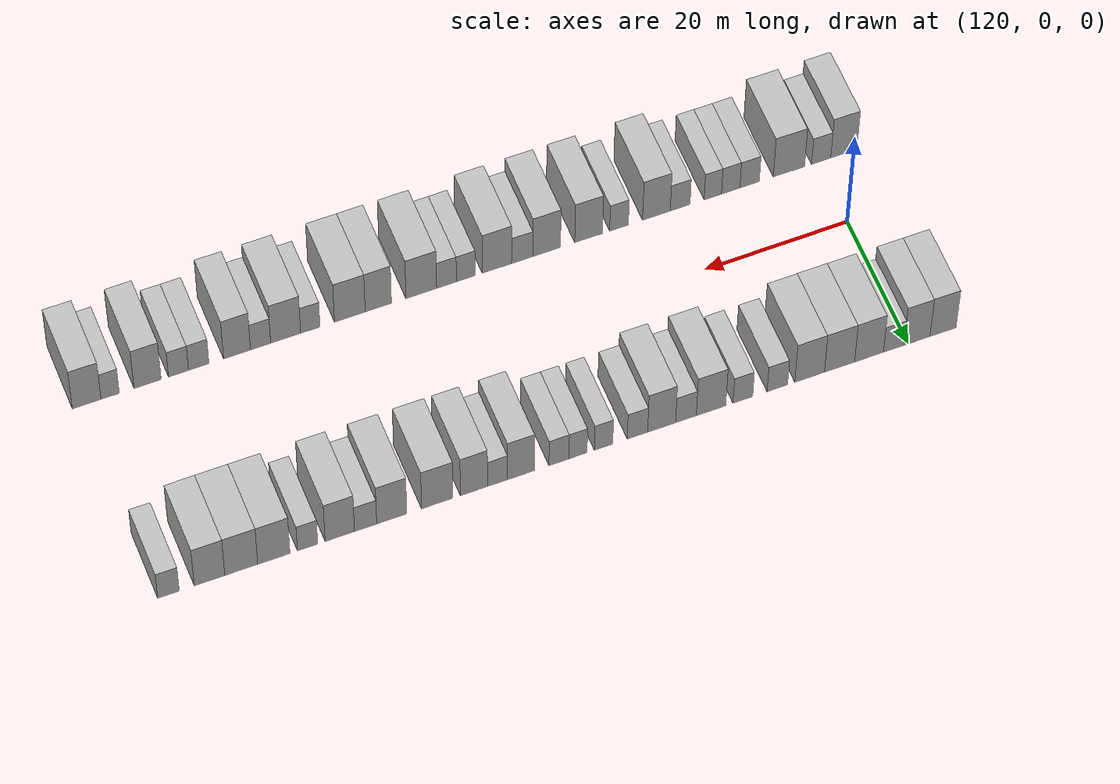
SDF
<sdf version="1.6">
 <world name="default">
  <model name="building_28">
   <static>1</static>
   <pose>115.1273 15.0000 0 0.000000 0.000000 1.570796</pose>
   <link name="link">
    <pose>0 0 4.50 0 0 0</pose>
    <collision name="collision"><geometry><box><size>10.0000 3.6715 9.0000</size></box></geometry></collision>
    <visual name="visual">
     <cast_shadows>0</cast_shadows>
     <geometry><box><size>10.0000 3.6715 9.0000</size></box></geometry>
     <material>
      <script>
       <uri>model://HANNAS_wall/materials/scripts</uri>
       <uri>model://HANNAS_wall/materials/textures</uri>
       <name>vrc/HANNAS_wall</name>
      </script>
     </material>
    </visual>
   </link>
  </model>
  <model name="building_29">
   <static>1</static>
   <pose>118.7872 15.0000 0 0.000000 0.000000 1.570796</pose>
   <link name="link">
    <pose>0 0 4.50 0 0 0</pose>
    <collision name="collision"><geometry><box><size>10.0000 3.6483 9.0000</size></box></geometry></collision>
    <visual name="visual">
     <cast_shadows>0</cast_shadows>
     <geometry><box><size>10.0000 3.6483 9.0000</size></box></geometry>
     <material>
      <script>
       <uri>model://HANNAS_wall/materials/scripts</uri>
       <uri>model://HANNAS_wall/materials/textures</uri>
       <name>vrc/HANNAS_wall</name>
      </script>
     </material>
    </visual>
   </link>
  </model>
  <model name="building_30">
   <static>1</static>
   <pose>122.0579 15.0000 0 0.000000 0.000000 1.570796</pose>
   <link name="link">
    <pose>0 0 3.00 0 0 0</pose>
    <collision name="collision"><geometry><box><size>10.0000 2.8931 6.0000</size></box></geometry></collision>
    <visual name="visual">
     <cast_shadows>0</cast_shadows>
     <geometry><box><size>10.0000 2.8931 6.0000</size></box></geometry>
     <material>
      <script>
       <uri>model://HANNAS_wall/materials/scripts</uri>
       <uri>model://HANNAS_wall/materials/textures</uri>
       <name>vrc/HANNAS_wall</name>
      </script>
     </material>
    </visual>
   </link>
  </model>
  <model name="building_31">
   <static>1</static>
   <pose>125.5207 15.0000 0 0.000000 0.000000 1.570796</pose>
   <link name="link">
    <pose>0 0 4.50 0 0 0</pose>
    <collision name="collision"><geometry><box><size>10.0000 4.0324 9.0000</size></box></geometry></collision>
    <visual name="visual">
     <cast_shadows>0</cast_shadows>
     <geometry><box><size>10.0000 4.0324 9.0000</size></box></geometry>
     <material>
      <script>
       <uri>model://HANNAS_wall/materials/scripts</uri>
       <uri>model://HANNAS_wall/materials/textures</uri>
       <name>vrc/HANNAS_wall</name>
      </script>
     </material>
    </visual>
   </link>
  </model>
  <model name="building_32">
   <static>1</static>
   <pose>129.6454 15.0000 0 0.000000 0.000000 1.570796</pose>
   <link name="link">
    <pose>0 0 4.50 0 0 0</pose>
    <collision name="collision"><geometry><box><size>10.0000 4.2172 9.0000</size></box></geometry></collision>
    <visual name="visual">
     <cast_shadows>0</cast_shadows>
     <geometry><box><size>10.0000 4.2172 9.0000</size></box></geometry>
     <material>
      <script>
       <uri>model://HANNAS_wall/materials/scripts</uri>
       <uri>model://HANNAS_wall/materials/textures</uri>
       <name>vrc/HANNAS_wall</name>
      </script>
     </material>
    </visual>
   </link>
  </model>
  <model name="building_33">
   <static>1</static>
   <pose>133.8189 15.0000 0 0.000000 0.000000 1.570796</pose>
   <link name="link">
    <pose>0 0 4.50 0 0 0</pose>
    <collision name="collision"><geometry><box><size>10.0000 4.1298 9.0000</size></box></geometry></collision>
    <visual name="visual">
     <cast_shadows>0</cast_shadows>
     <geometry><box><size>10.0000 4.1298 9.0000</size></box></geometry>
     <material>
      <script>
       <uri>model://HANNAS_wall/materials/scripts</uri>
       <uri>model://HANNAS_wall/materials/textures</uri>
       <name>vrc/HANNAS_wall</name>
      </script>
     </material>
    </visual>
   </link>
  </model>
  <model name="building_34">
   <static>1</static>
   <pose>138.3126 15.0000 0 0.000000 0.000000 1.570796</pose>
   <link name="link">
    <pose>0 0 3.00 0 0 0</pose>
    <collision name="collision"><geometry><box><size>10.0000 2.8577 6.0000</size></box></geometry></collision>
    <visual name="visual">
     <cast_shadows>0</cast_shadows>
     <geometry><box><size>10.0000 2.8577 6.0000</size></box></geometry>
     <material>
      <script>
       <uri>model://HANNAS_wall/materials/scripts</uri>
       <uri>model://HANNAS_wall/materials/textures</uri>
       <name>vrc/HANNAS_wall</name>
      </script>
     </material>
    </visual>
   </link>
  </model>
  <model name="building_35">
   <static>1</static>
   <pose>143.1070 15.0000 0 0.000000 0.000000 1.570796</pose>
   <link name="link">
    <pose>0 0 3.00 0 0 0</pose>
    <collision name="collision"><geometry><box><size>10.0000 2.7310 6.0000</size></box></geometry></collision>
    <visual name="visual">
     <cast_shadows>0</cast_shadows>
     <geometry><box><size>10.0000 2.7310 6.0000</size></box></geometry>
     <material>
      <script>
       <uri>model://HANNAS_wall/materials/scripts</uri>
       <uri>model://HANNAS_wall/materials/textures</uri>
       <name>vrc/HANNAS_wall</name>
      </script>
     </material>
    </visual>
   </link>
  </model>
  <model name="building_36">
   <static>1</static>
   <pose>147.5088 15.0000 0 0.000000 0.000000 1.570796</pose>
   <link name="link">
    <pose>0 0 4.50 0 0 0</pose>
    <collision name="collision"><geometry><box><size>10.0000 4.0727 9.0000</size></box></geometry></collision>
    <visual name="visual">
     <cast_shadows>0</cast_shadows>
     <geometry><box><size>10.0000 4.0727 9.0000</size></box></geometry>
     <material>
      <script>
       <uri>model://HANNAS_wall/materials/scripts</uri>
       <uri>model://HANNAS_wall/materials/textures</uri>
       <name>vrc/HANNAS_wall</name>
      </script>
     </material>
    </visual>
   </link>
  </model>
  <model name="building_37">
   <static>1</static>
   <pose>150.9793 15.0000 0 0.000000 0.000000 1.570796</pose>
   <link name="link">
    <pose>0 0 3.00 0 0 0</pose>
    <collision name="collision"><geometry><box><size>10.0000 2.8682 6.0000</size></box></geometry></collision>
    <visual name="visual">
     <cast_shadows>0</cast_shadows>
     <geometry><box><size>10.0000 2.8682 6.0000</size></box></geometry>
     <material>
      <script>
       <uri>model://HANNAS_wall/materials/scripts</uri>
       <uri>model://HANNAS_wall/materials/textures</uri>
       <name>vrc/HANNAS_wall</name>
      </script>
     </material>
    </visual>
   </link>
  </model>
  <model name="building_38">
   <static>1</static>
   <pose>154.3399 15.0000 0 0.000000 0.000000 1.570796</pose>
   <link name="link">
    <pose>0 0 4.50 0 0 0</pose>
    <collision name="collision"><geometry><box><size>10.0000 3.8530 9.0000</size></box></geometry></collision>
    <visual name="visual">
     <cast_shadows>0</cast_shadows>
     <geometry><box><size>10.0000 3.8530 9.0000</size></box></geometry>
     <material>
      <script>
       <uri>model://HANNAS_wall/materials/scripts</uri>
       <uri>model://HANNAS_wall/materials/textures</uri>
       <name>vrc/HANNAS_wall</name>
      </script>
     </material>
    </visual>
   </link>
  </model>
  <model name="building_39">
   <static>1</static>
   <pose>157.6672 15.0000 0 0.000000 0.000000 1.570796</pose>
   <link name="link">
    <pose>0 0 3.00 0 0 0</pose>
    <collision name="collision"><geometry><box><size>10.0000 2.8016 6.0000</size></box></geometry></collision>
    <visual name="visual">
     <cast_shadows>0</cast_shadows>
     <geometry><box><size>10.0000 2.8016 6.0000</size></box></geometry>
     <material>
      <script>
       <uri>model://HANNAS_wall/materials/scripts</uri>
       <uri>model://HANNAS_wall/materials/textures</uri>
       <name>vrc/HANNAS_wall</name>
      </script>
     </material>
    </visual>
   </link>
  </model>
  <model name="building_40">
   <static>1</static>
   <pose>162.3288 15.0000 0 0.000000 0.000000 1.570796</pose>
   <link name="link">
    <pose>0 0 3.00 0 0 0</pose>
    <collision name="collision"><geometry><box><size>10.0000 2.5216 6.0000</size></box></geometry></collision>
    <visual name="visual">
     <cast_shadows>0</cast_shadows>
     <geometry><box><size>10.0000 2.5216 6.0000</size></box></geometry>
     <material>
      <script>
       <uri>model://HANNAS_wall/materials/scripts</uri>
       <uri>model://HANNAS_wall/materials/textures</uri>
       <name>vrc/HANNAS_wall</name>
      </script>
     </material>
    </visual>
   </link>
  </model>
  <model name="building_41">
   <static>1</static>
   <pose>165.8322 15.0000 0 0.000000 0.000000 1.570796</pose>
   <link name="link">
    <pose>0 0 3.00 0 0 0</pose>
    <collision name="collision"><geometry><box><size>10.0000 2.4854 6.0000</size></box></geometry></collision>
    <visual name="visual">
     <cast_shadows>0</cast_shadows>
     <geometry><box><size>10.0000 2.4854 6.0000</size></box></geometry>
     <material>
      <script>
       <uri>model://HANNAS_wall/materials/scripts</uri>
       <uri>model://HANNAS_wall/materials/textures</uri>
       <name>vrc/HANNAS_wall</name>
      </script>
     </material>
    </visual>
   </link>
  </model>
  <model name="building_42">
   <static>1</static>
   <pose>168.4433 15.0000 0 0.000000 0.000000 1.570796</pose>
   <link name="link">
    <pose>0 0 3.00 0 0 0</pose>
    <collision name="collision"><geometry><box><size>10.0000 2.7369 6.0000</size></box></geometry></collision>
    <visual name="visual">
     <cast_shadows>0</cast_shadows>
     <geometry><box><size>10.0000 2.7369 6.0000</size></box></geometry>
     <material>
      <script>
       <uri>model://HANNAS_wall/materials/scripts</uri>
       <uri>model://HANNAS_wall/materials/textures</uri>
       <name>vrc/HANNAS_wall</name>
      </script>
     </material>
    </visual>
   </link>
  </model>
  <model name="building_43">
   <static>1</static>
   <pose>173.6424 15.0000 0 0.000000 0.000000 1.570796</pose>
   <link name="link">
    <pose>0 0 4.50 0 0 0</pose>
    <collision name="collision"><geometry><box><size>10.0000 3.6613 9.0000</size></box></geometry></collision>
    <visual name="visual">
     <cast_shadows>0</cast_shadows>
     <geometry><box><size>10.0000 3.6613 9.0000</size></box></geometry>
     <material>
      <script>
       <uri>model://HANNAS_wall/materials/scripts</uri>
       <uri>model://HANNAS_wall/materials/textures</uri>
       <name>vrc/HANNAS_wall</name>
      </script>
     </material>
    </visual>
   </link>
  </model>
  <model name="building_44">
   <static>1</static>
   <pose>176.8333 15.0000 0 0.000000 0.000000 1.570796</pose>
   <link name="link">
    <pose>0 0 3.00 0 0 0</pose>
    <collision name="collision"><geometry><box><size>10.0000 2.7204 6.0000</size></box></geometry></collision>
    <visual name="visual">
     <cast_shadows>0</cast_shadows>
     <geometry><box><size>10.0000 2.7204 6.0000</size></box></geometry>
     <material>
      <script>
       <uri>model://HANNAS_wall/materials/scripts</uri>
       <uri>model://HANNAS_wall/materials/textures</uri>
       <name>vrc/HANNAS_wall</name>
      </script>
     </material>
    </visual>
   </link>
  </model>
  <model name="building_45">
   <static>1</static>
   <pose>180.0384 15.0000 0 0.000000 0.000000 1.570796</pose>
   <link name="link">
    <pose>0 0 4.50 0 0 0</pose>
    <collision name="collision"><geometry><box><size>10.0000 3.6898 9.0000</size></box></geometry></collision>
    <visual name="visual">
     <cast_shadows>0</cast_shadows>
     <geometry><box><size>10.0000 3.6898 9.0000</size></box></geometry>
     <material>
      <script>
       <uri>model://HANNAS_wall/materials/scripts</uri>
       <uri>model://HANNAS_wall/materials/textures</uri>
       <name>vrc/HANNAS_wall</name>
      </script>
     </material>
    </visual>
   </link>
  </model>
  <model name="building_46">
   <static>1</static>
   <pose>185.0139 15.0000 0 0.000000 0.000000 1.570796</pose>
   <link name="link">
    <pose>0 0 4.50 0 0 0</pose>
    <collision name="collision"><geometry><box><size>10.0000 4.2611 9.0000</size></box></geometry></collision>
    <visual name="visual">
     <cast_shadows>0</cast_shadows>
     <geometry><box><size>10.0000 4.2611 9.0000</size></box></geometry>
     <material>
      <script>
       <uri>model://HANNAS_wall/materials/scripts</uri>
       <uri>model://HANNAS_wall/materials/textures</uri>
       <name>vrc/HANNAS_wall</name>
      </script>
     </material>
    </visual>
   </link>
  </model>
  <model name="building_47">
   <static>1</static>
   <pose>191.1745 15.0000 0 0.000000 0.000000 1.570796</pose>
   <link name="link">
    <pose>0 0 4.50 0 0 0</pose>
    <collision name="collision"><geometry><box><size>10.0000 4.0600 9.0000</size></box></geometry></collision>
    <visual name="visual">
     <cast_shadows>0</cast_shadows>
     <geometry><box><size>10.0000 4.0600 9.0000</size></box></geometry>
     <material>
      <script>
       <uri>model://HANNAS_wall/materials/scripts</uri>
       <uri>model://HANNAS_wall/materials/textures</uri>
       <name>vrc/HANNAS_wall</name>
      </script>
     </material>
    </visual>
   </link>
  </model>
  <model name="building_48">
   <static>1</static>
   <pose>194.7028 15.0000 0 0.000000 0.000000 1.570796</pose>
   <link name="link">
    <pose>0 0 3.00 0 0 0</pose>
    <collision name="collision"><geometry><box><size>10.0000 2.9967 6.0000</size></box></geometry></collision>
    <visual name="visual">
     <cast_shadows>0</cast_shadows>
     <geometry><box><size>10.0000 2.9967 6.0000</size></box></geometry>
     <material>
      <script>
       <uri>model://HANNAS_wall/materials/scripts</uri>
       <uri>model://HANNAS_wall/materials/textures</uri>
       <name>vrc/HANNAS_wall</name>
      </script>
     </material>
    </visual>
   </link>
  </model>
  <model name="building_49">
   <static>1</static>
   <pose>198.1769 15.0000 0 0.000000 0.000000 1.570796</pose>
   <link name="link">
    <pose>0 0 4.50 0 0 0</pose>
    <collision name="collision"><geometry><box><size>10.0000 3.9513 9.0000</size></box></geometry></collision>
    <visual name="visual">
     <cast_shadows>0</cast_shadows>
     <geometry><box><size>10.0000 3.9513 9.0000</size></box></geometry>
     <material>
      <script>
       <uri>model://HANNAS_wall/materials/scripts</uri>
       <uri>model://HANNAS_wall/materials/textures</uri>
       <name>vrc/HANNAS_wall</name>
      </script>
     </material>
    </visual>
   </link>
  </model>
  <model name="building_50">
   <static>1</static>
   <pose>202.5141 15.0000 0 0.000000 0.000000 1.570796</pose>
   <link name="link">
    <pose>0 0 3.00 0 0 0</pose>
    <collision name="collision"><geometry><box><size>10.0000 2.7232 6.0000</size></box></geometry></collision>
    <visual name="visual">
     <cast_shadows>0</cast_shadows>
     <geometry><box><size>10.0000 2.7232 6.0000</size></box></geometry>
     <material>
      <script>
       <uri>model://HANNAS_wall/materials/scripts</uri>
       <uri>model://HANNAS_wall/materials/textures</uri>
       <name>vrc/HANNAS_wall</name>
      </script>
     </material>
    </visual>
   </link>
  </model>
  <model name="building_51">
   <static>1</static>
   <pose>207.0337 15.0000 0 0.000000 0.000000 1.570796</pose>
   <link name="link">
    <pose>0 0 4.50 0 0 0</pose>
    <collision name="collision"><geometry><box><size>10.0000 4.3159 9.0000</size></box></geometry></collision>
    <visual name="visual">
     <cast_shadows>0</cast_shadows>
     <geometry><box><size>10.0000 4.3159 9.0000</size></box></geometry>
     <material>
      <script>
       <uri>model://HANNAS_wall/materials/scripts</uri>
       <uri>model://HANNAS_wall/materials/textures</uri>
       <name>vrc/HANNAS_wall</name>
      </script>
     </material>
    </visual>
   </link>
  </model>
  <model name="building_52">
   <static>1</static>
   <pose>211.3939 15.0000 0 0.000000 0.000000 1.570796</pose>
   <link name="link">
    <pose>0 0 4.50 0 0 0</pose>
    <collision name="collision"><geometry><box><size>10.0000 4.4045 9.0000</size></box></geometry></collision>
    <visual name="visual">
     <cast_shadows>0</cast_shadows>
     <geometry><box><size>10.0000 4.4045 9.0000</size></box></geometry>
     <material>
      <script>
       <uri>model://HANNAS_wall/materials/scripts</uri>
       <uri>model://HANNAS_wall/materials/textures</uri>
       <name>vrc/HANNAS_wall</name>
      </script>
     </material>
    </visual>
   </link>
  </model>
  <model name="building_53">
   <static>1</static>
   <pose>215.6306 15.0000 0 0.000000 0.000000 1.570796</pose>
   <link name="link">
    <pose>0 0 4.50 0 0 0</pose>
    <collision name="collision"><geometry><box><size>10.0000 4.0690 9.0000</size></box></geometry></collision>
    <visual name="visual">
     <cast_shadows>0</cast_shadows>
     <geometry><box><size>10.0000 4.0690 9.0000</size></box></geometry>
     <material>
      <script>
       <uri>model://HANNAS_wall/materials/scripts</uri>
       <uri>model://HANNAS_wall/materials/textures</uri>
       <name>vrc/HANNAS_wall</name>
      </script>
     </material>
    </visual>
   </link>
  </model>
  <model name="building_54">
   <static>1</static>
   <pose>221.0971 15.0000 0 0.000000 0.000000 1.570796</pose>
   <link name="link">
    <pose>0 0 3.00 0 0 0</pose>
    <collision name="collision"><geometry><box><size>10.0000 2.8641 6.0000</size></box></geometry></collision>
    <visual name="visual">
     <cast_shadows>0</cast_shadows>
     <geometry><box><size>10.0000 2.8641 6.0000</size></box></geometry>
     <material>
      <script>
       <uri>model://HANNAS_wall/materials/scripts</uri>
       <uri>model://HANNAS_wall/materials/textures</uri>
       <name>vrc/HANNAS_wall</name>
      </script>
     </material>
    </visual>
   </link>
  </model>
  <model name="building_82">
   <static>1</static>
   <pose>116.1658 -15.0000 0 0.000000 0.000000 1.570796</pose>
   <link name="link">
    <pose>0 0 4.50 0 0 0</pose>
    <collision name="collision"><geometry><box><size>10.0000 3.7325 9.0000</size></box></geometry></collision>
    <visual name="visual">
     <cast_shadows>0</cast_shadows>
     <geometry><box><size>10.0000 3.7325 9.0000</size></box></geometry>
     <material>
      <script>
       <uri>model://HANNAS_wall/materials/scripts</uri>
       <uri>model://HANNAS_wall/materials/textures</uri>
       <name>vrc/HANNAS_wall</name>
      </script>
     </material>
    </visual>
   </link>
  </model>
  <model name="building_83">
   <static>1</static>
   <pose>119.4046 -15.0000 0 0.000000 0.000000 1.570796</pose>
   <link name="link">
    <pose>0 0 3.00 0 0 0</pose>
    <collision name="collision"><geometry><box><size>10.0000 2.7450 6.0000</size></box></geometry></collision>
    <visual name="visual">
     <cast_shadows>0</cast_shadows>
     <geometry><box><size>10.0000 2.7450 6.0000</size></box></geometry>
     <material>
      <script>
       <uri>model://HANNAS_wall/materials/scripts</uri>
       <uri>model://HANNAS_wall/materials/textures</uri>
       <name>vrc/HANNAS_wall</name>
      </script>
     </material>
    </visual>
   </link>
  </model>
  <model name="building_84">
   <static>1</static>
   <pose>124.0030 -15.0000 0 0.000000 0.000000 1.570796</pose>
   <link name="link">
    <pose>0 0 4.50 0 0 0</pose>
    <collision name="collision"><geometry><box><size>10.0000 4.4517 9.0000</size></box></geometry></collision>
    <visual name="visual">
     <cast_shadows>0</cast_shadows>
     <geometry><box><size>10.0000 4.4517 9.0000</size></box></geometry>
     <material>
      <script>
       <uri>model://HANNAS_wall/materials/scripts</uri>
       <uri>model://HANNAS_wall/materials/textures</uri>
       <name>vrc/HANNAS_wall</name>
      </script>
     </material>
    </visual>
   </link>
  </model>
  <model name="building_85">
   <static>1</static>
   <pose>129.6084 -15.0000 0 0.000000 0.000000 1.570796</pose>
   <link name="link">
    <pose>0 0 3.00 0 0 0</pose>
    <collision name="collision"><geometry><box><size>10.0000 2.7591 6.0000</size></box></geometry></collision>
    <visual name="visual">
     <cast_shadows>0</cast_shadows>
     <geometry><box><size>10.0000 2.7591 6.0000</size></box></geometry>
     <material>
      <script>
       <uri>model://HANNAS_wall/materials/scripts</uri>
       <uri>model://HANNAS_wall/materials/textures</uri>
       <name>vrc/HANNAS_wall</name>
      </script>
     </material>
    </visual>
   </link>
  </model>
  <model name="building_86">
   <static>1</static>
   <pose>132.2948 -15.0000 0 0.000000 0.000000 1.570796</pose>
   <link name="link">
    <pose>0 0 3.00 0 0 0</pose>
    <collision name="collision"><geometry><box><size>10.0000 2.6136 6.0000</size></box></geometry></collision>
    <visual name="visual">
     <cast_shadows>0</cast_shadows>
     <geometry><box><size>10.0000 2.6136 6.0000</size></box></geometry>
     <material>
      <script>
       <uri>model://HANNAS_wall/materials/scripts</uri>
       <uri>model://HANNAS_wall/materials/textures</uri>
       <name>vrc/HANNAS_wall</name>
      </script>
     </material>
    </visual>
   </link>
  </model>
  <model name="building_87">
   <static>1</static>
   <pose>134.8313 -15.0000 0 0.000000 0.000000 1.570796</pose>
   <link name="link">
    <pose>0 0 3.00 0 0 0</pose>
    <collision name="collision"><geometry><box><size>10.0000 2.4594 6.0000</size></box></geometry></collision>
    <visual name="visual">
     <cast_shadows>0</cast_shadows>
     <geometry><box><size>10.0000 2.4594 6.0000</size></box></geometry>
     <material>
      <script>
       <uri>model://HANNAS_wall/materials/scripts</uri>
       <uri>model://HANNAS_wall/materials/textures</uri>
       <name>vrc/HANNAS_wall</name>
      </script>
     </material>
    </visual>
   </link>
  </model>
  <model name="building_88">
   <static>1</static>
   <pose>139.4545 -15.0000 0 0.000000 0.000000 1.570796</pose>
   <link name="link">
    <pose>0 0 3.00 0 0 0</pose>
    <collision name="collision"><geometry><box><size>10.0000 2.7870 6.0000</size></box></geometry></collision>
    <visual name="visual">
     <cast_shadows>0</cast_shadows>
     <geometry><box><size>10.0000 2.7870 6.0000</size></box></geometry>
     <material>
      <script>
       <uri>model://HANNAS_wall/materials/scripts</uri>
       <uri>model://HANNAS_wall/materials/textures</uri>
       <name>vrc/HANNAS_wall</name>
      </script>
     </material>
    </visual>
   </link>
  </model>
  <model name="building_89">
   <static>1</static>
   <pose>142.8083 -15.0000 0 0.000000 0.000000 1.570796</pose>
   <link name="link">
    <pose>0 0 4.50 0 0 0</pose>
    <collision name="collision"><geometry><box><size>10.0000 3.9207 9.0000</size></box></geometry></collision>
    <visual name="visual">
     <cast_shadows>0</cast_shadows>
     <geometry><box><size>10.0000 3.9207 9.0000</size></box></geometry>
     <material>
      <script>
       <uri>model://HANNAS_wall/materials/scripts</uri>
       <uri>model://HANNAS_wall/materials/textures</uri>
       <name>vrc/HANNAS_wall</name>
      </script>
     </material>
    </visual>
   </link>
  </model>
  <model name="building_90">
   <static>1</static>
   <pose>148.0841 -15.0000 0 0.000000 0.000000 1.570796</pose>
   <link name="link">
    <pose>0 0 3.00 0 0 0</pose>
    <collision name="collision"><geometry><box><size>10.0000 2.6309 6.0000</size></box></geometry></collision>
    <visual name="visual">
     <cast_shadows>0</cast_shadows>
     <geometry><box><size>10.0000 2.6309 6.0000</size></box></geometry>
     <material>
      <script>
       <uri>model://HANNAS_wall/materials/scripts</uri>
       <uri>model://HANNAS_wall/materials/textures</uri>
       <name>vrc/HANNAS_wall</name>
      </script>
     </material>
    </visual>
   </link>
  </model>
  <model name="building_91">
   <static>1</static>
   <pose>152.3532 -15.0000 0 0.000000 0.000000 1.570796</pose>
   <link name="link">
    <pose>0 0 4.50 0 0 0</pose>
    <collision name="collision"><geometry><box><size>10.0000 3.9073 9.0000</size></box></geometry></collision>
    <visual name="visual">
     <cast_shadows>0</cast_shadows>
     <geometry><box><size>10.0000 3.9073 9.0000</size></box></geometry>
     <material>
      <script>
       <uri>model://HANNAS_wall/materials/scripts</uri>
       <uri>model://HANNAS_wall/materials/textures</uri>
       <name>vrc/HANNAS_wall</name>
      </script>
     </material>
    </visual>
   </link>
  </model>
  <model name="building_92">
   <static>1</static>
   <pose>158.2473 -15.0000 0 0.000000 0.000000 1.570796</pose>
   <link name="link">
    <pose>0 0 4.50 0 0 0</pose>
    <collision name="collision"><geometry><box><size>10.0000 3.8808 9.0000</size></box></geometry></collision>
    <visual name="visual">
     <cast_shadows>0</cast_shadows>
     <geometry><box><size>10.0000 3.8808 9.0000</size></box></geometry>
     <material>
      <script>
       <uri>model://HANNAS_wall/materials/scripts</uri>
       <uri>model://HANNAS_wall/materials/textures</uri>
       <name>vrc/HANNAS_wall</name>
      </script>
     </material>
    </visual>
   </link>
  </model>
  <model name="building_93">
   <static>1</static>
   <pose>161.6703 -15.0000 0 0.000000 0.000000 1.570796</pose>
   <link name="link">
    <pose>0 0 3.00 0 0 0</pose>
    <collision name="collision"><geometry><box><size>10.0000 2.9652 6.0000</size></box></geometry></collision>
    <visual name="visual">
     <cast_shadows>0</cast_shadows>
     <geometry><box><size>10.0000 2.9652 6.0000</size></box></geometry>
     <material>
      <script>
       <uri>model://HANNAS_wall/materials/scripts</uri>
       <uri>model://HANNAS_wall/materials/textures</uri>
       <name>vrc/HANNAS_wall</name>
      </script>
     </material>
    </visual>
   </link>
  </model>
  <model name="building_94">
   <static>1</static>
   <pose>165.1978 -15.0000 0 0.000000 0.000000 1.570796</pose>
   <link name="link">
    <pose>0 0 4.50 0 0 0</pose>
    <collision name="collision"><geometry><box><size>10.0000 4.0898 9.0000</size></box></geometry></collision>
    <visual name="visual">
     <cast_shadows>0</cast_shadows>
     <geometry><box><size>10.0000 4.0898 9.0000</size></box></geometry>
     <material>
      <script>
       <uri>model://HANNAS_wall/materials/scripts</uri>
       <uri>model://HANNAS_wall/materials/textures</uri>
       <name>vrc/HANNAS_wall</name>
      </script>
     </material>
    </visual>
   </link>
  </model>
  <model name="building_95">
   <static>1</static>
   <pose>169.5430 -15.0000 0 0.000000 0.000000 1.570796</pose>
   <link name="link">
    <pose>0 0 3.00 0 0 0</pose>
    <collision name="collision"><geometry><box><size>10.0000 2.6006 6.0000</size></box></geometry></collision>
    <visual name="visual">
     <cast_shadows>0</cast_shadows>
     <geometry><box><size>10.0000 2.6006 6.0000</size></box></geometry>
     <material>
      <script>
       <uri>model://HANNAS_wall/materials/scripts</uri>
       <uri>model://HANNAS_wall/materials/textures</uri>
       <name>vrc/HANNAS_wall</name>
      </script>
     </material>
    </visual>
   </link>
  </model>
  <model name="building_96">
   <static>1</static>
   <pose>172.2152 -15.0000 0 0.000000 0.000000 1.570796</pose>
   <link name="link">
    <pose>0 0 3.00 0 0 0</pose>
    <collision name="collision"><geometry><box><size>10.0000 2.7437 6.0000</size></box></geometry></collision>
    <visual name="visual">
     <cast_shadows>0</cast_shadows>
     <geometry><box><size>10.0000 2.7437 6.0000</size></box></geometry>
     <material>
      <script>
       <uri>model://HANNAS_wall/materials/scripts</uri>
       <uri>model://HANNAS_wall/materials/textures</uri>
       <name>vrc/HANNAS_wall</name>
      </script>
     </material>
    </visual>
   </link>
  </model>
  <model name="building_97">
   <static>1</static>
   <pose>175.7179 -15.0000 0 0.000000 0.000000 1.570796</pose>
   <link name="link">
    <pose>0 0 4.50 0 0 0</pose>
    <collision name="collision"><geometry><box><size>10.0000 4.2616 9.0000</size></box></geometry></collision>
    <visual name="visual">
     <cast_shadows>0</cast_shadows>
     <geometry><box><size>10.0000 4.2616 9.0000</size></box></geometry>
     <material>
      <script>
       <uri>model://HANNAS_wall/materials/scripts</uri>
       <uri>model://HANNAS_wall/materials/textures</uri>
       <name>vrc/HANNAS_wall</name>
      </script>
     </material>
    </visual>
   </link>
  </model>
  <model name="building_98">
   <static>1</static>
   <pose>181.6637 -15.0000 0 0.000000 0.000000 1.570796</pose>
   <link name="link">
    <pose>0 0 4.50 0 0 0</pose>
    <collision name="collision"><geometry><box><size>10.0000 3.6299 9.0000</size></box></geometry></collision>
    <visual name="visual">
     <cast_shadows>0</cast_shadows>
     <geometry><box><size>10.0000 3.6299 9.0000</size></box></geometry>
     <material>
      <script>
       <uri>model://HANNAS_wall/materials/scripts</uri>
       <uri>model://HANNAS_wall/materials/textures</uri>
       <name>vrc/HANNAS_wall</name>
      </script>
     </material>
    </visual>
   </link>
  </model>
  <model name="building_99">
   <static>1</static>
   <pose>185.5974 -15.0000 0 0.000000 0.000000 1.570796</pose>
   <link name="link">
    <pose>0 0 4.50 0 0 0</pose>
    <collision name="collision"><geometry><box><size>10.0000 4.2376 9.0000</size></box></geometry></collision>
    <visual name="visual">
     <cast_shadows>0</cast_shadows>
     <geometry><box><size>10.0000 4.2376 9.0000</size></box></geometry>
     <material>
      <script>
       <uri>model://HANNAS_wall/materials/scripts</uri>
       <uri>model://HANNAS_wall/materials/textures</uri>
       <name>vrc/HANNAS_wall</name>
      </script>
     </material>
    </visual>
   </link>
  </model>
  <model name="building_100">
   <static>1</static>
   <pose>191.0426 -15.0000 0 0.000000 0.000000 1.570796</pose>
   <link name="link">
    <pose>0 0 3.00 0 0 0</pose>
    <collision name="collision"><geometry><box><size>10.0000 2.6527 6.0000</size></box></geometry></collision>
    <visual name="visual">
     <cast_shadows>0</cast_shadows>
     <geometry><box><size>10.0000 2.6527 6.0000</size></box></geometry>
     <material>
      <script>
       <uri>model://HANNAS_wall/materials/scripts</uri>
       <uri>model://HANNAS_wall/materials/textures</uri>
       <name>vrc/HANNAS_wall</name>
      </script>
     </material>
    </visual>
   </link>
  </model>
  <model name="building_101">
   <static>1</static>
   <pose>194.4287 -15.0000 0 0.000000 0.000000 1.570796</pose>
   <link name="link">
    <pose>0 0 4.50 0 0 0</pose>
    <collision name="collision"><geometry><box><size>10.0000 4.1196 9.0000</size></box></geometry></collision>
    <visual name="visual">
     <cast_shadows>0</cast_shadows>
     <geometry><box><size>10.0000 4.1196 9.0000</size></box></geometry>
     <material>
      <script>
       <uri>model://HANNAS_wall/materials/scripts</uri>
       <uri>model://HANNAS_wall/materials/textures</uri>
       <name>vrc/HANNAS_wall</name>
      </script>
     </material>
    </visual>
   </link>
  </model>
  <model name="building_102">
   <static>1</static>
   <pose>197.8717 -15.0000 0 0.000000 0.000000 1.570796</pose>
   <link name="link">
    <pose>0 0 3.00 0 0 0</pose>
    <collision name="collision"><geometry><box><size>10.0000 2.7663 6.0000</size></box></geometry></collision>
    <visual name="visual">
     <cast_shadows>0</cast_shadows>
     <geometry><box><size>10.0000 2.7663 6.0000</size></box></geometry>
     <material>
      <script>
       <uri>model://HANNAS_wall/materials/scripts</uri>
       <uri>model://HANNAS_wall/materials/textures</uri>
       <name>vrc/HANNAS_wall</name>
      </script>
     </material>
    </visual>
   </link>
  </model>
  <model name="building_103">
   <static>1</static>
   <pose>201.0994 -15.0000 0 0.000000 0.000000 1.570796</pose>
   <link name="link">
    <pose>0 0 4.50 0 0 0</pose>
    <collision name="collision"><geometry><box><size>10.0000 3.6893 9.0000</size></box></geometry></collision>
    <visual name="visual">
     <cast_shadows>0</cast_shadows>
     <geometry><box><size>10.0000 3.6893 9.0000</size></box></geometry>
     <material>
      <script>
       <uri>model://HANNAS_wall/materials/scripts</uri>
       <uri>model://HANNAS_wall/materials/textures</uri>
       <name>vrc/HANNAS_wall</name>
      </script>
     </material>
    </visual>
   </link>
  </model>
  <model name="building_104">
   <static>1</static>
   <pose>206.3376 -15.0000 0 0.000000 0.000000 1.570796</pose>
   <link name="link">
    <pose>0 0 3.00 0 0 0</pose>
    <collision name="collision"><geometry><box><size>10.0000 2.7871 6.0000</size></box></geometry></collision>
    <visual name="visual">
     <cast_shadows>0</cast_shadows>
     <geometry><box><size>10.0000 2.7871 6.0000</size></box></geometry>
     <material>
      <script>
       <uri>model://HANNAS_wall/materials/scripts</uri>
       <uri>model://HANNAS_wall/materials/textures</uri>
       <name>vrc/HANNAS_wall</name>
      </script>
     </material>
    </visual>
   </link>
  </model>
  <model name="building_105">
   <static>1</static>
   <pose>209.0908 -15.0000 0 0.000000 0.000000 1.570796</pose>
   <link name="link">
    <pose>0 0 3.00 0 0 0</pose>
    <collision name="collision"><geometry><box><size>10.0000 2.7193 6.0000</size></box></geometry></collision>
    <visual name="visual">
     <cast_shadows>0</cast_shadows>
     <geometry><box><size>10.0000 2.7193 6.0000</size></box></geometry>
     <material>
      <script>
       <uri>model://HANNAS_wall/materials/scripts</uri>
       <uri>model://HANNAS_wall/materials/textures</uri>
       <name>vrc/HANNAS_wall</name>
      </script>
     </material>
    </visual>
   </link>
  </model>
  <model name="building_106">
   <static>1</static>
   <pose>213.2941 -15.0000 0 0.000000 0.000000 1.570796</pose>
   <link name="link">
    <pose>0 0 4.50 0 0 0</pose>
    <collision name="collision"><geometry><box><size>10.0000 3.6873 9.0000</size></box></geometry></collision>
    <visual name="visual">
     <cast_shadows>0</cast_shadows>
     <geometry><box><size>10.0000 3.6873 9.0000</size></box></geometry>
     <material>
      <script>
       <uri>model://HANNAS_wall/materials/scripts</uri>
       <uri>model://HANNAS_wall/materials/textures</uri>
       <name>vrc/HANNAS_wall</name>
      </script>
     </material>
    </visual>
   </link>
  </model>
  <model name="building_107">
   <static>1</static>
   <pose>218.3757 -15.0000 0 0.000000 0.000000 1.570796</pose>
   <link name="link">
    <pose>0 0 3.00 0 0 0</pose>
    <collision name="collision"><geometry><box><size>10.0000 2.4758 6.0000</size></box></geometry></collision>
    <visual name="visual">
     <cast_shadows>0</cast_shadows>
     <geometry><box><size>10.0000 2.4758 6.0000</size></box></geometry>
     <material>
      <script>
       <uri>model://HANNAS_wall/materials/scripts</uri>
       <uri>model://HANNAS_wall/materials/textures</uri>
       <name>vrc/HANNAS_wall</name>
      </script>
     </material>
    </visual>
   </link>
  </model>
  <model name="building_108">
   <static>1</static>
   <pose>221.5563 -15.0000 0 0.000000 0.000000 1.570796</pose>
   <link name="link">
    <pose>0 0 4.50 0 0 0</pose>
    <collision name="collision"><geometry><box><size>10.0000 3.8854 9.0000</size></box></geometry></collision>
    <visual name="visual">
     <cast_shadows>0</cast_shadows>
     <geometry><box><size>10.0000 3.8854 9.0000</size></box></geometry>
     <material>
      <script>
       <uri>model://HANNAS_wall/materials/scripts</uri>
       <uri>model://HANNAS_wall/materials/textures</uri>
       <name>vrc/HANNAS_wall</name>
      </script>
     </material>
    </visual>
   </link>
  </model>
 </world>
</sdf>
